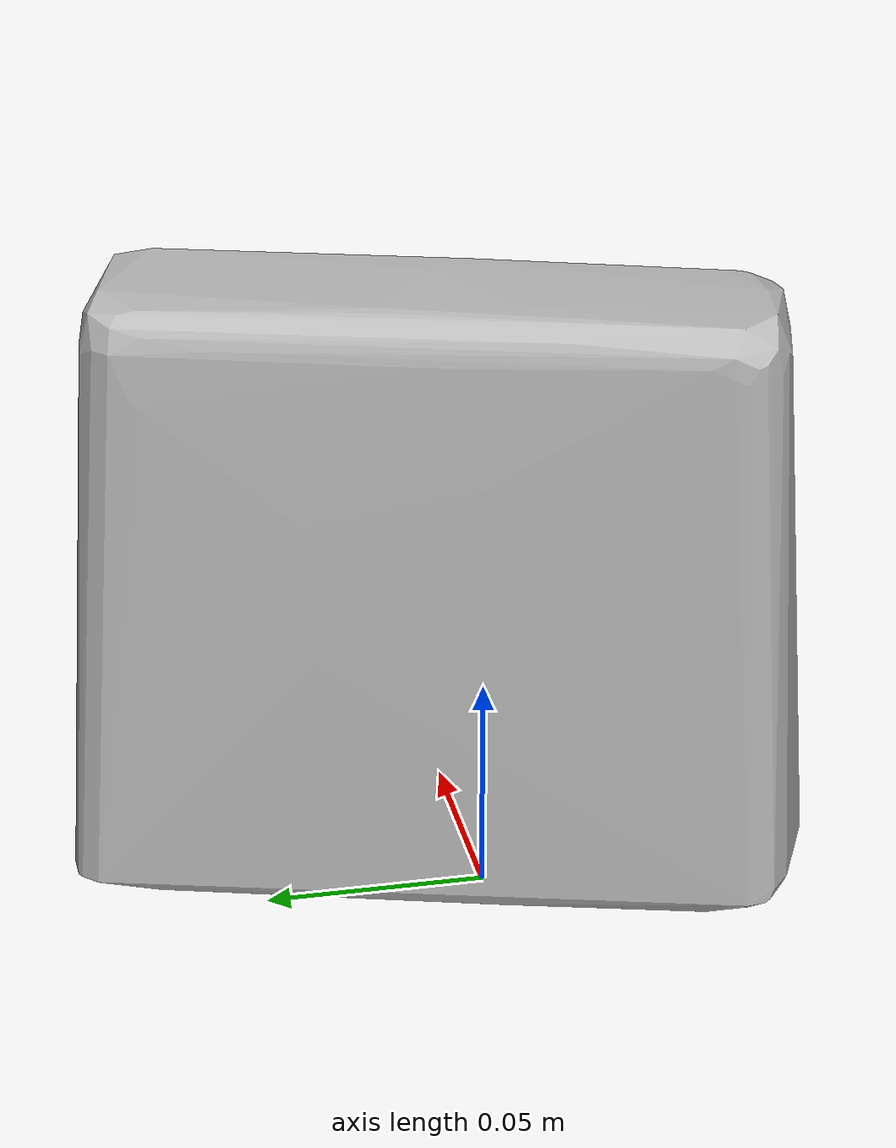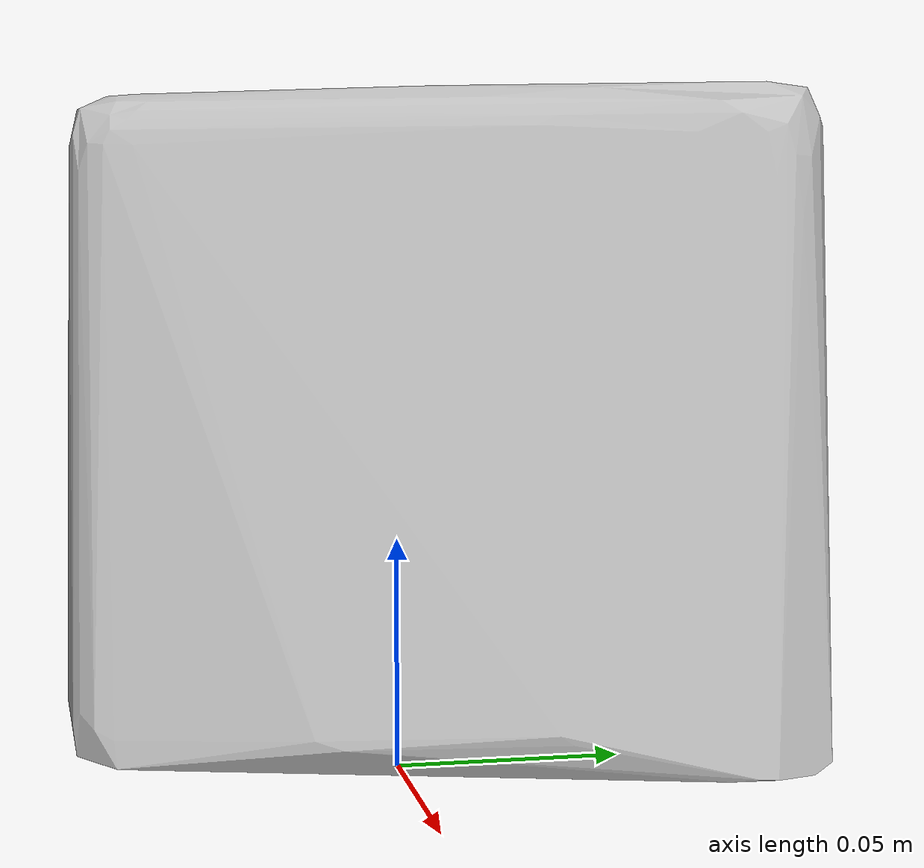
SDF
<?xml version='1.0'?>
<sdf version="1.4">
  <model name="nature_valley_granola_thins_dark_chocolate">
    <static>false</static>
    <link name="link">
      <inertial>
        <pose>0.008785169704803301 0.008772623333710542 0.07208052120274891 1.5626430690429953 -0.01717675086093574 2.868094090172111</pose>
        <mass>0.10606213131581564</mass>
        <inertia>
          <ixx>0.00037212546578717766</ixx>
          <ixy>-1.487894357805745e-22</ixy>
          <ixz>9.48724864432131e-21</ixz>
          <iyy>0.00022906209464534404</iyy>
          <iyz>3.2575458766651803e-22</iyz>
          <izz>0.0001863811637126065</izz>
        </inertia>
      </inertial>
      <collision name="collision">
        <geometry>
          <mesh>
            <!-- Use a downsampled mesh for collisions -->
            <uri>model:///nature_valley_granola_thins_dark_chocolate/nature_valley_granola_thins_dark_chocolate_250_collision.obj</uri>
	        </mesh>
        </geometry>
        <surface>
      </surface>
      </collision>
      <visual name="visual">
        <geometry>
          <mesh>
            <uri>model:///nature_valley_granola_thins_dark_chocolate/optimized_tsdf_texture_mapped_mesh.obj</uri>
	        </mesh>
        </geometry>
        <material>
          <script>
            <uri>model:///nature_valley_granola_thins_dark_chocolate/nature_valley_granola_thins_dark_chocolate.material</uri>
            <name>nature_valley_granola_thins_dark_chocolate</name>
          </script>
        </material>
      </visual>
    </link>
  </model>
</sdf>
